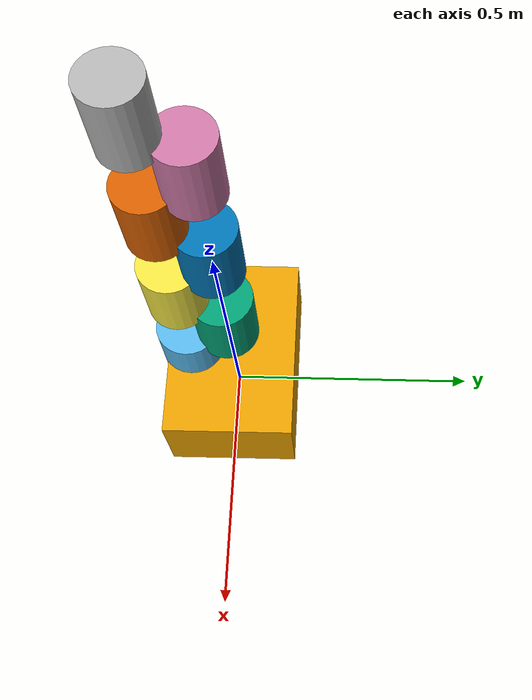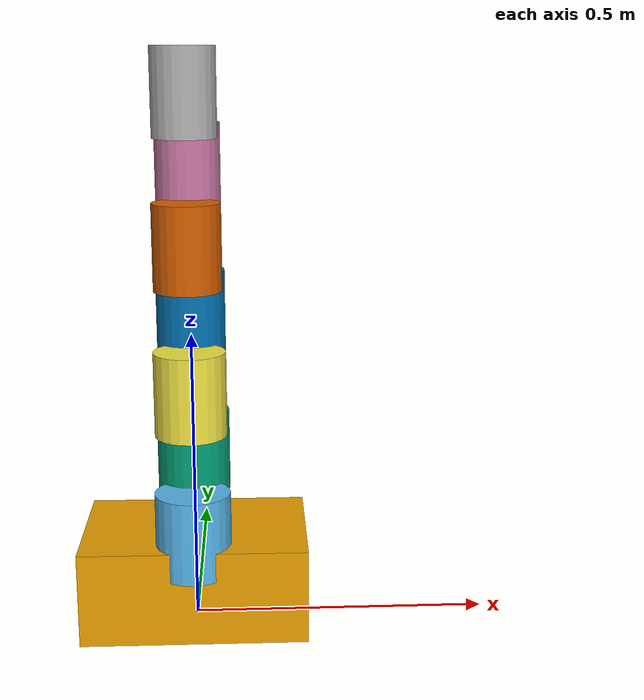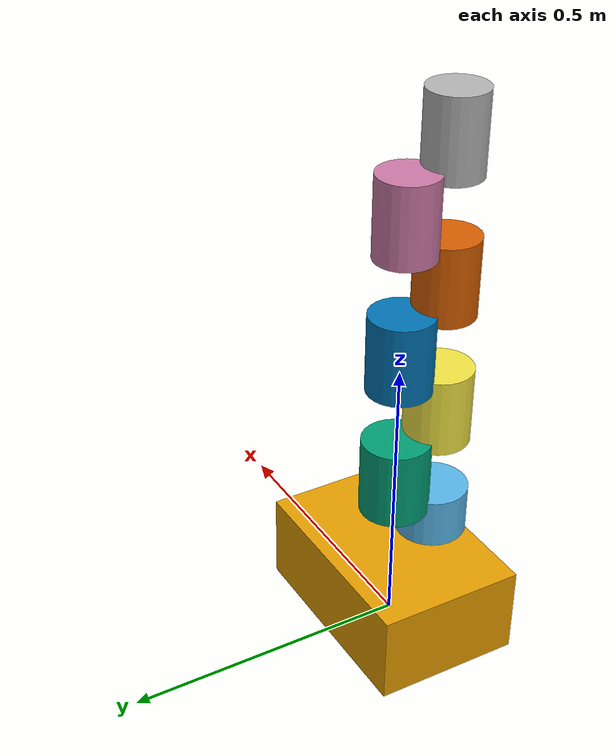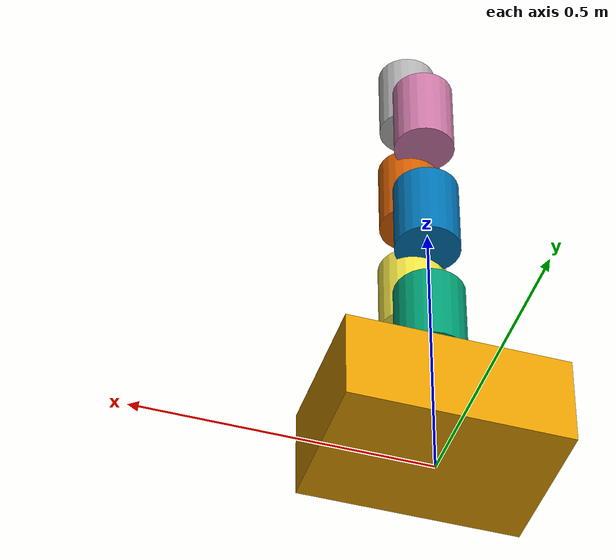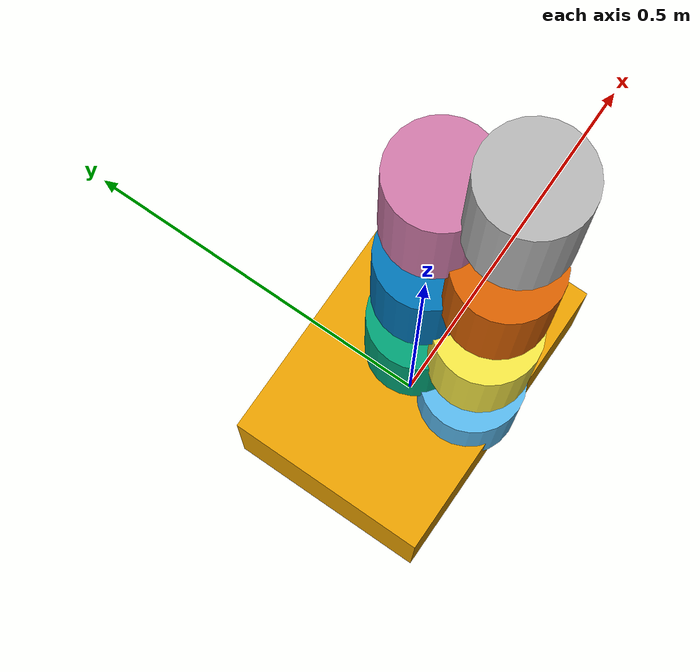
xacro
<?xml version="1.0" encoding="utf-8"?>
<!-- 现实基准原件: robotiq_2f_85 (robotiq_2f_85_gripper_visualization/urdf/robotiq_arg2f_85_macro.xacro)                                          -->
<!-- 机型描述: Robotiq 2F-85 二指自适应平行连杆机械夹爪 URDF 基准                                                                   -->
<!-- 运动学拓扑统计: 8 连杆 / 8 关节                                                    -->
<robot name="robotiq_2f_85">
  <link name="base_link">
    <inertial>
      <origin xyz="0 0 0.08" rpy="0 0 0"/>
      <mass value="16.40"/>
      <inertia ixx="0.185" ixy="0.0" ixz="0.0" iyy="0.240" iyz="0.0" izz="0.295"/>
    </inertial>
    <visual>
      <origin xyz="0 0 0.08" rpy="0 0 0"/>
      <geometry><box size="0.38 0.26 0.16"/></geometry>
    </visual>
    <collision>
      <origin xyz="0 0 0.08" rpy="0 0 0"/>
      <geometry><box size="0.38 0.26 0.16"/></geometry>
    </collision>
  </link>

  <link name="link_1">
    <inertial>
      <origin xyz="0 0 0.06" rpy="0 0 0"/>
      <mass value="3.200"/>
      <inertia ixx="0.014" ixy="0.0" ixz="0.0" iyy="0.014" iyz="0.0" izz="0.008"/>
    </inertial>
    <visual>
      <origin xyz="0 0 0.06" rpy="0 0 0"/>
      <geometry><cylinder radius="0.063" length="0.14"/></geometry>
    </visual>
  </link>
  <joint name="joint_1" type="revolute">
    <parent link="base_link"/>
    <child link="link_1"/>
    <origin xyz="0 -0.080 0.12" rpy="0 0 0"/>
    <axis xyz="1 0 0"/>
    <limit lower="-2.7925" upper="2.7925" effort="85.0" velocity="6.28"/>
  </joint>

  <link name="link_2">
    <inertial>
      <origin xyz="0 0 0.06" rpy="0 0 0"/>
      <mass value="2.263"/>
      <inertia ixx="0.014" ixy="0.0" ixz="0.0" iyy="0.014" iyz="0.0" izz="0.008"/>
    </inertial>
    <visual>
      <origin xyz="0 0 0.06" rpy="0 0 0"/>
      <geometry><cylinder radius="0.061" length="0.14"/></geometry>
    </visual>
  </link>
  <joint name="joint_2" type="revolute">
    <parent link="link_1"/>
    <child link="link_2"/>
    <origin xyz="0 0.080 0.12" rpy="0 0 0"/>
    <axis xyz="0 1 0"/>
    <limit lower="-2.7925" upper="2.7925" effort="85.0" velocity="6.28"/>
  </joint>

  <link name="link_3">
    <inertial>
      <origin xyz="0 0 0.06" rpy="0 0 0"/>
      <mass value="1.848"/>
      <inertia ixx="0.014" ixy="0.0" ixz="0.0" iyy="0.014" iyz="0.0" izz="0.008"/>
    </inertial>
    <visual>
      <origin xyz="0 0 0.06" rpy="0 0 0"/>
      <geometry><cylinder radius="0.059" length="0.14"/></geometry>
    </visual>
  </link>
  <joint name="joint_3" type="revolute">
    <parent link="link_2"/>
    <child link="link_3"/>
    <origin xyz="0 -0.080 0.12" rpy="0 0 0"/>
    <axis xyz="0 0 1"/>
    <limit lower="-2.7925" upper="2.7925" effort="85.0" velocity="6.28"/>
  </joint>

  <link name="link_4">
    <inertial>
      <origin xyz="0 0 0.06" rpy="0 0 0"/>
      <mass value="1.600"/>
      <inertia ixx="0.014" ixy="0.0" ixz="0.0" iyy="0.014" iyz="0.0" izz="0.008"/>
    </inertial>
    <visual>
      <origin xyz="0 0 0.06" rpy="0 0 0"/>
      <geometry><cylinder radius="0.057" length="0.14"/></geometry>
    </visual>
  </link>
  <joint name="joint_4" type="revolute">
    <parent link="link_3"/>
    <child link="link_4"/>
    <origin xyz="0 0.080 0.12" rpy="0 0 0"/>
    <axis xyz="0 1 0"/>
    <limit lower="-2.7925" upper="2.7925" effort="85.0" velocity="6.28"/>
  </joint>

  <link name="link_5">
    <inertial>
      <origin xyz="0 0 0.06" rpy="0 0 0"/>
      <mass value="1.431"/>
      <inertia ixx="0.014" ixy="0.0" ixz="0.0" iyy="0.014" iyz="0.0" izz="0.008"/>
    </inertial>
    <visual>
      <origin xyz="0 0 0.06" rpy="0 0 0"/>
      <geometry><cylinder radius="0.055" length="0.14"/></geometry>
    </visual>
  </link>
  <joint name="joint_5" type="revolute">
    <parent link="link_4"/>
    <child link="link_5"/>
    <origin xyz="0 -0.080 0.12" rpy="0 0 0"/>
    <axis xyz="1 0 0"/>
    <limit lower="-2.7925" upper="2.7925" effort="85.0" velocity="6.28"/>
  </joint>

  <link name="link_6">
    <inertial>
      <origin xyz="0 0 0.06" rpy="0 0 0"/>
      <mass value="1.306"/>
      <inertia ixx="0.014" ixy="0.0" ixz="0.0" iyy="0.014" iyz="0.0" izz="0.008"/>
    </inertial>
    <visual>
      <origin xyz="0 0 0.06" rpy="0 0 0"/>
      <geometry><cylinder radius="0.053" length="0.14"/></geometry>
    </visual>
  </link>
  <joint name="joint_6" type="revolute">
    <parent link="link_5"/>
    <child link="link_6"/>
    <origin xyz="0 0.080 0.12" rpy="0 0 0"/>
    <axis xyz="0 0 1"/>
    <limit lower="-2.7925" upper="2.7925" effort="85.0" velocity="6.28"/>
  </joint>

  <link name="link_7">
    <inertial>
      <origin xyz="0 0 0.06" rpy="0 0 0"/>
      <mass value="1.209"/>
      <inertia ixx="0.014" ixy="0.0" ixz="0.0" iyy="0.014" iyz="0.0" izz="0.008"/>
    </inertial>
    <visual>
      <origin xyz="0 0 0.06" rpy="0 0 0"/>
      <geometry><cylinder radius="0.051" length="0.14"/></geometry>
    </visual>
  </link>
  <joint name="joint_7" type="revolute">
    <parent link="link_6"/>
    <child link="link_7"/>
    <origin xyz="0 -0.080 0.12" rpy="0 0 0"/>
    <axis xyz="1 0 0"/>
    <limit lower="-2.7925" upper="2.7925" effort="85.0" velocity="6.28"/>
  </joint>
</robot>
